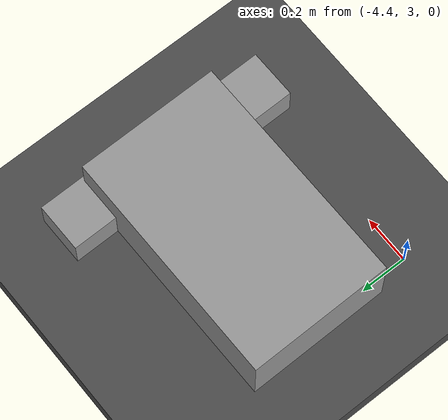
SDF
<sdf version="1.7">
 <world name="default">
  <model name="ground_plane">
   <static>1</static>
   <link name="link">
    <collision name="collision">
     <geometry><plane><normal>0 0 1</normal><size>100 100</size></plane></geometry>
     <surface><friction><ode><mu>100</mu><mu2>50</mu2></ode></friction></surface>
    </collision>
    <visual name="visual">
     <cast_shadows>0</cast_shadows>
     <geometry><plane><normal>0 0 1</normal><size>100 100</size></plane></geometry>
     <material>
      <script><uri>file://media/materials/scripts/gazebo.material</uri><name>Gazebo/Grey</name></script>
      <ambient>0.55 0.55 0.55 1</ambient>
      <diffuse>0.55 0.55 0.55 1</diffuse>
      <specular>0.08 0.08 0.08 1</specular>
      <emissive>0 0 0 1</emissive>
     </material>
    </visual>
   </link>
  </model>
  <model name="asphalt_plane">
   <static>1</static>
   <link name="link">
    <collision name="collision"><geometry><box><size>20 20 0.1</size></box></geometry></collision>
    <visual name="visual">
     <cast_shadows>0</cast_shadows>
     <geometry><box><size>20 20 0.1</size></box></geometry>
     <material>
      <script>
       <uri>model://asphalt_plane/materials/scripts</uri>
       <uri>model://asphalt_plane/materials/textures</uri>
       <name>vrc/asphalt</name>
      </script>
      <ambient>0.09 0.09 0.085 1</ambient>
      <diffuse>0.09 0.09 0.085 1</diffuse>
      <specular>0.08 0.08 0.08 1</specular>
      <emissive>0 0 0 1</emissive>
     </material>
    </visual>
   </link>
   <pose>-12.6134 -1.31009 -0.045514 0 -0 0</pose>
  </model>
  <model name="bed_clone_0">
   <link name="link_1">
    <inertial>
     <mass>0.166557</mass>
     <inertia>
      <ixx>0.00618823</ixx>
      <ixy>0</ixy>
      <ixz>0</ixz>
      <iyy>0.0149173</iyy>
      <iyz>0</iyz>
      <izz>0.0190304</izz>
     </inertia>
    </inertial>
    <pose>0.268517 -0.007523 0.053425 0 -0 0</pose>
    <visual name="visual">
     <geometry><box><size>1 0.609172 0.273416</size></box></geometry>
     <material>
      <lighting>1</lighting>
      <script><uri>file://media/materials/scripts/gazebo.material</uri><name>Gazebo/Grey</name></script>
      <shader type="pixel"><normal_map>__default__</normal_map></shader>
      <ambient>0.42 0.43 0.42 1</ambient>
      <diffuse>0.42 0.43 0.42 1</diffuse>
      <specular>0.08 0.08 0.08 1</specular>
      <emissive>0 0 0 1</emissive>
     </material>
    </visual>
    <collision name="collision">
     <geometry><box><size>1 0.609172 0.273416</size></box></geometry>
     <surface>
      <friction>
       <ode><mu>1</mu><mu2>1</mu2><fdir1>0 0 0</fdir1><slip1>0</slip1><slip2>0</slip2></ode>
       <torsional>
        <coefficient>1</coefficient>
        <patch_radius>0</patch_radius>
        <surface_radius>0</surface_radius>
        <use_patch_radius>1</use_patch_radius>
        <ode><slip>0</slip></ode>
       </torsional>
      </friction>
      <bounce><restitution_coefficient>0</restitution_coefficient><threshold>1e+06</threshold></bounce>
      <contact>
       <collide_without_contact>0</collide_without_contact>
       <collide_without_contact_bitmask>1</collide_without_contact_bitmask>
       <collide_bitmask>1</collide_bitmask>
       <ode>
        <soft_cfm>0</soft_cfm>
        <soft_erp>0.2</soft_erp>
        <kp>1e+13</kp>
        <kd>1</kd>
        <max_vel>0.01</max_vel>
        <min_depth>0</min_depth>
       </ode>
       <bullet>
        <split_impulse>1</split_impulse>
        <split_impulse_penetration_threshold>-0.01</split_impulse_penetration_threshold>
        <soft_cfm>0</soft_cfm>
        <soft_erp>0.2</soft_erp>
        <kp>1e+13</kp>
        <kd>1</kd>
       </bullet>
      </contact>
     </surface>
    </collision>
   </link>
   <link name="link_2">
    <inertial>
     <mass>0.00661892</mass>
     <inertia>
      <ixx>3.651e-05</ixx>
      <ixy>0</ixy>
      <ixz>0</ixz>
      <iyy>3.722e-05</iyy>
      <iyz>0</iyz>
      <izz>4.631e-05</izz>
     </inertia>
    </inertial>
    <pose>-0.144333 -0.400103 -0.02691 0 -0 0</pose>
    <visual name="visual">
     <geometry><box><size>0.206441 0.203314 0.157681</size></box></geometry>
     <material>
      <lighting>1</lighting>
      <script><uri>file://media/materials/scripts/gazebo.material</uri><name>Gazebo/Grey</name></script>
      <shader type="pixel"><normal_map>__default__</normal_map></shader>
      <ambient>0.42 0.43 0.42 1</ambient>
      <diffuse>0.42 0.43 0.42 1</diffuse>
      <specular>0.08 0.08 0.08 1</specular>
      <emissive>0 0 0 1</emissive>
     </material>
    </visual>
    <collision name="collision">
     <geometry><box><size>0.206441 0.203314 0.157681</size></box></geometry>
     <surface>
      <friction>
       <ode><mu>1</mu><mu2>1</mu2><fdir1>0 0 0</fdir1><slip1>0</slip1><slip2>0</slip2></ode>
       <torsional>
        <coefficient>1</coefficient>
        <patch_radius>0</patch_radius>
        <surface_radius>0</surface_radius>
        <use_patch_radius>1</use_patch_radius>
        <ode><slip>0</slip></ode>
       </torsional>
      </friction>
      <bounce><restitution_coefficient>0</restitution_coefficient><threshold>1e+06</threshold></bounce>
      <contact>
       <collide_without_contact>0</collide_without_contact>
       <collide_without_contact_bitmask>1</collide_without_contact_bitmask>
       <collide_bitmask>1</collide_bitmask>
       <ode>
        <soft_cfm>0</soft_cfm>
        <soft_erp>0.2</soft_erp>
        <kp>1e+13</kp>
        <kd>1</kd>
        <max_vel>0.01</max_vel>
        <min_depth>0</min_depth>
       </ode>
       <bullet>
        <split_impulse>1</split_impulse>
        <split_impulse_penetration_threshold>-0.01</split_impulse_penetration_threshold>
        <soft_cfm>0</soft_cfm>
        <soft_erp>0.2</soft_erp>
        <kp>1e+13</kp>
        <kd>1</kd>
       </bullet>
      </contact>
     </surface>
    </collision>
   </link>
   <link name="link_2_clone">
    <inertial>
     <mass>0.00661892</mass>
     <inertia>
      <ixx>3.651e-05</ixx>
      <ixy>0</ixy>
      <ixz>0</ixz>
      <iyy>3.722e-05</iyy>
      <iyz>0</iyz>
      <izz>4.631e-05</izz>
     </inertia>
    </inertial>
    <pose>-0.124183 0.407627 -0.026515 0 -0 0</pose>
    <visual name="visual">
     <geometry><box><size>0.206441 0.203314 0.157681</size></box></geometry>
     <material>
      <lighting>1</lighting>
      <script><uri>file://media/materials/scripts/gazebo.material</uri><name>Gazebo/Grey</name></script>
      <shader type="pixel"><normal_map>__default__</normal_map></shader>
      <ambient>0.42 0.43 0.42 1</ambient>
      <diffuse>0.42 0.43 0.42 1</diffuse>
      <specular>0.08 0.08 0.08 1</specular>
      <emissive>0 0 0 1</emissive>
     </material>
    </visual>
    <collision name="collision">
     <geometry><box><size>0.206441 0.203314 0.157681</size></box></geometry>
     <surface>
      <friction>
       <ode><mu>1</mu><mu2>1</mu2><fdir1>0 0 0</fdir1><slip1>0</slip1><slip2>0</slip2></ode>
       <torsional>
        <coefficient>1</coefficient>
        <patch_radius>0</patch_radius>
        <surface_radius>0</surface_radius>
        <use_patch_radius>1</use_patch_radius>
        <ode><slip>0</slip></ode>
       </torsional>
      </friction>
      <bounce><restitution_coefficient>0</restitution_coefficient><threshold>1e+06</threshold></bounce>
      <contact>
       <collide_without_contact>0</collide_without_contact>
       <collide_without_contact_bitmask>1</collide_without_contact_bitmask>
       <collide_bitmask>1</collide_bitmask>
       <ode>
        <soft_cfm>0</soft_cfm>
        <soft_erp>0.2</soft_erp>
        <kp>1e+13</kp>
        <kd>1</kd>
        <max_vel>0.01</max_vel>
        <min_depth>0</min_depth>
       </ode>
       <bullet>
        <split_impulse>1</split_impulse>
        <split_impulse_penetration_threshold>-0.01</split_impulse_penetration_threshold>
        <soft_cfm>0</soft_cfm>
        <soft_erp>0.2</soft_erp>
        <kp>1e+13</kp>
        <kd>1</kd>
       </bullet>
      </contact>
     </surface>
    </collision>
   </link>
   <static>1</static>
   <pose>-3.68143 3.45279 0.093275 2.7e-05 0 -3.13537</pose>
  </model>
 </world>
</sdf>
